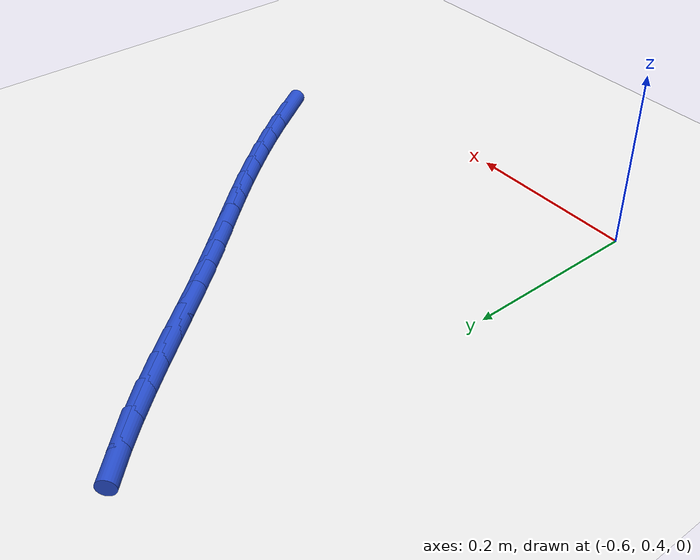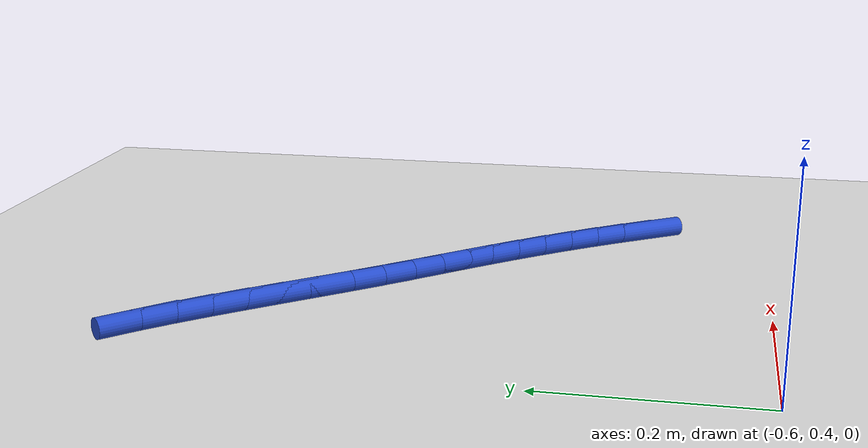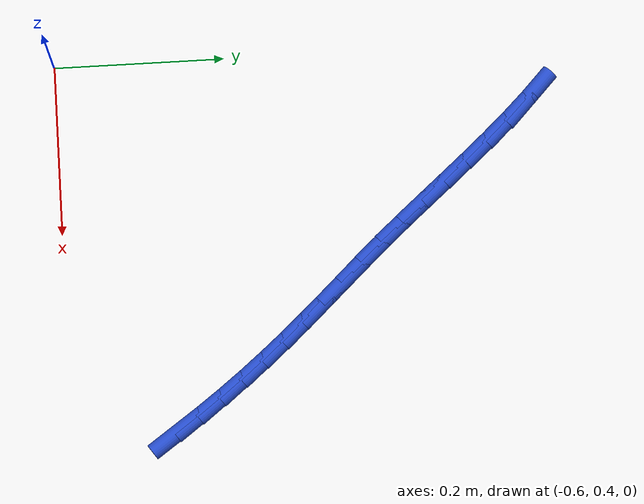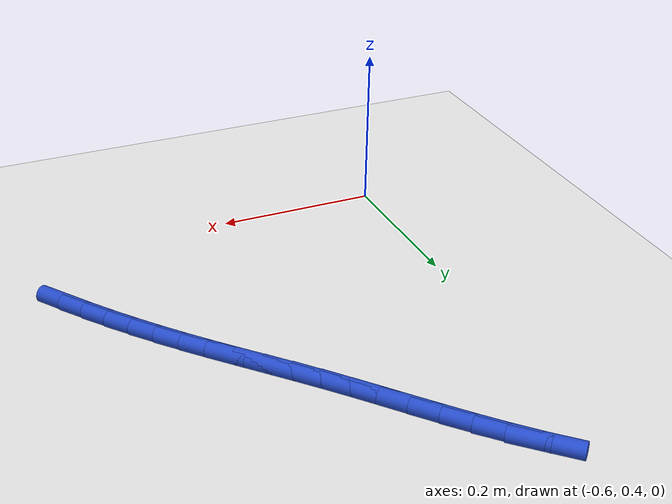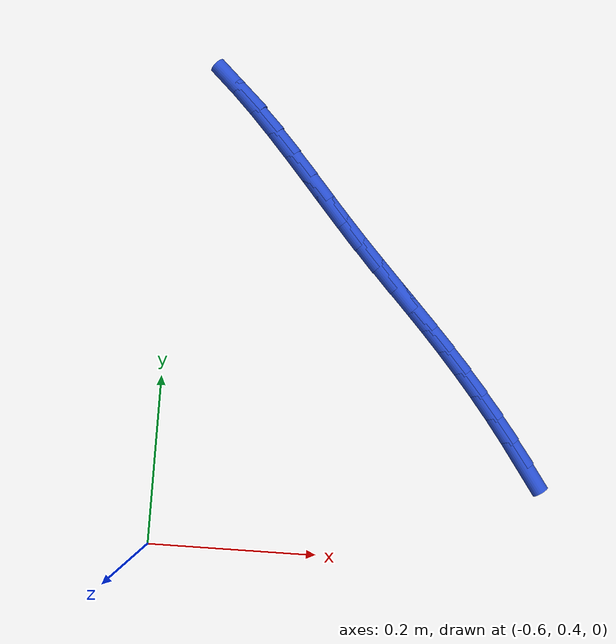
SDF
<sdf version="1.6">
 <world name="default">
  <model name="ground_plane">
   <static>1</static>
   <link name="link">
    <collision name="collision">
     <geometry><plane><normal>0 0 1</normal><size>100 100</size></plane></geometry>
     <surface><friction><ode><mu>100</mu><mu2>50</mu2></ode></friction></surface>
    </collision>
    <visual name="visual">
     <cast_shadows>0</cast_shadows>
     <geometry><plane><normal>0 0 1</normal><size>100 100</size></plane></geometry>
     <material>
      <script><uri>file://media/materials/scripts/gazebo.material</uri><name>Gazebo/WhiteGlow</name></script>
     </material>
    </visual>
   </link>
  </model>
  <model name="line">
   <link name="link_17">
    <pose>-0.16201124922747104 0.5260937787866821 0.01 0 1.57 -0.9595404313695587</pose>
    <collision name="collision">
     <geometry><cylinder><radius>0.01</radius><length>0.08</length></cylinder></geometry>
    </collision>
    <visual name="visual">
     <material>
      <script><name>Gazebo/Blue</name><uri>file://media/materials/scripts/gazebo.material</uri></script>
     </material>
     <geometry><cylinder><radius>0.01</radius><length>0.08</length></cylinder></geometry>
    </visual>
   </link>
   <link name="link_18">
    <pose>-0.18100655229974133 0.5531993397178676 0.01 0 1.57 -0.9333762293121596</pose>
    <collision name="collision">
     <geometry><cylinder><radius>0.01</radius><length>0.08</length></cylinder></geometry>
    </collision>
    <visual name="visual">
     <material>
      <script><name>Gazebo/Blue</name><uri>file://media/materials/scripts/gazebo.material</uri></script>
     </material>
     <geometry><cylinder><radius>0.01</radius><length>0.08</length></cylinder></geometry>
    </visual>
   </link>
   <link name="link_19">
    <pose>-0.2006817367141205 0.5797679870796226 0.01 0 1.57 -0.908679943496282</pose>
    <collision name="collision">
     <geometry><cylinder><radius>0.01</radius><length>0.08</length></cylinder></geometry>
    </collision>
    <visual name="visual">
     <material>
      <script><name>Gazebo/Blue</name><uri>file://media/materials/scripts/gazebo.material</uri></script>
     </material>
     <geometry><cylinder><radius>0.01</radius><length>0.08</length></cylinder></geometry>
    </visual>
   </link>
   <link name="link_20">
    <pose>-0.2209632946041221 0.6057866075929514 0.01 0 1.57 -0.8853678064941394</pose>
    <collision name="collision">
     <geometry><cylinder><radius>0.01</radius><length>0.08</length></cylinder></geometry>
    </collision>
    <visual name="visual">
     <material>
      <script><name>Gazebo/Blue</name><uri>file://media/materials/scripts/gazebo.material</uri></script>
     </material>
     <geometry><cylinder><radius>0.01</radius><length>0.08</length></cylinder></geometry>
    </visual>
   </link>
   <link name="link_21">
    <pose>-0.2417777181032598 0.6312420879788588 0.01 0 1.57 -0.8633592404002483</pose>
    <collision name="collision">
     <geometry><cylinder><radius>0.01</radius><length>0.08</length></cylinder></geometry>
    </collision>
    <visual name="visual">
     <material>
      <script><name>Gazebo/Blue</name><uri>file://media/materials/scripts/gazebo.material</uri></script>
     </material>
     <geometry><cylinder><radius>0.01</radius><length>0.08</length></cylinder></geometry>
    </visual>
   </link>
   <link name="link_22">
    <pose>-0.2630514993450471 0.6561213149583486 0.01 0 1.57 -0.8429819206663465</pose>
    <collision name="collision">
     <geometry><cylinder><radius>0.01</radius><length>0.08</length></cylinder></geometry>
    </collision>
    <visual name="visual">
     <material>
      <script><name>Gazebo/Blue</name><uri>file://media/materials/scripts/gazebo.material</uri></script>
     </material>
     <geometry><cylinder><radius>0.01</radius><length>0.08</length></cylinder></geometry>
    </visual>
   </link>
   <link name="link_23">
    <pose>-0.2847099743242084 0.6804296617883872 0.01 0 1.57 -0.8281848112918715</pose>
    <collision name="collision">
     <geometry><cylinder><radius>0.01</radius><length>0.08</length></cylinder></geometry>
    </collision>
    <visual name="visual">
     <material>
      <script><name>Gazebo/Blue</name><uri>file://media/materials/scripts/gazebo.material</uri></script>
     </material>
     <geometry><cylinder><radius>0.01</radius><length>0.08</length></cylinder></geometry>
    </visual>
   </link>
   <link name="link_24">
    <pose>-0.3066673037927108 0.7043511926659936 0.01 0 1.57 -0.8213705310832886</pose>
    <collision name="collision">
     <geometry><cylinder><radius>0.01</radius><length>0.08</length></cylinder></geometry>
    </collision>
    <visual name="visual">
     <material>
      <script><name>Gazebo/Blue</name><uri>file://media/materials/scripts/gazebo.material</uri></script>
     </material>
     <geometry><cylinder><radius>0.01</radius><length>0.08</length></cylinder></geometry>
    </visual>
   </link>
   <link name="link_25">
    <pose>-0.3288313861517711 0.7281701061089301 0.01 0 1.57 -0.8226092343197998</pose>
    <collision name="collision">
     <geometry><cylinder><radius>0.01</radius><length>0.08</length></cylinder></geometry>
    </collision>
    <visual name="visual">
     <material>
      <script><name>Gazebo/Blue</name><uri>file://media/materials/scripts/gazebo.material</uri></script>
     </material>
     <geometry><cylinder><radius>0.01</radius><length>0.08</length></cylinder></geometry>
    </visual>
   </link>
   <link name="link_26">
    <pose>-0.35111005078721735 0.7521717041836616 0.01 0 1.57 -0.8317297002062111</pose>
    <collision name="collision">
     <geometry><cylinder><radius>0.01</radius><length>0.08</length></cylinder></geometry>
    </collision>
    <visual name="visual">
     <material>
      <script><name>Gazebo/Blue</name><uri>file://media/materials/scripts/gazebo.material</uri></script>
     </material>
     <geometry><cylinder><radius>0.01</radius><length>0.08</length></cylinder></geometry>
    </visual>
   </link>
   <link name="link_27">
    <pose>-0.37341112708487795 0.7766412889566531 0.01 0 1.57 -0.847632205602835</pose>
    <collision name="collision">
     <geometry><cylinder><radius>0.01</radius><length>0.08</length></cylinder></geometry>
    </collision>
    <visual name="visual">
     <material>
      <script><name>Gazebo/Blue</name><uri>file://media/materials/scripts/gazebo.material</uri></script>
     </material>
     <geometry><cylinder><radius>0.01</radius><length>0.08</length></cylinder></geometry>
    </visual>
   </link>
   <link name="link_28">
    <pose>-0.3956509368412511 0.8018370214054659 0.01 0 1.57 -0.8609041498238644</pose>
    <collision name="collision">
     <geometry><cylinder><radius>0.01</radius><length>0.08</length></cylinder></geometry>
    </collision>
    <visual name="visual">
     <material>
      <script><name>Gazebo/Blue</name><uri>file://media/materials/scripts/gazebo.material</uri></script>
     </material>
     <geometry><cylinder><radius>0.01</radius><length>0.08</length></cylinder></geometry>
    </visual>
   </link>
   <link name="link_29">
    <pose>-0.4178532981766036 0.8276735125554032 0.01 0 1.57 -0.8656417425640428</pose>
    <collision name="collision">
     <geometry><cylinder><radius>0.01</radius><length>0.08</length></cylinder></geometry>
    </collision>
    <visual name="visual">
     <material>
      <script><name>Gazebo/Blue</name><uri>file://media/materials/scripts/gazebo.material</uri></script>
     </material>
     <geometry><cylinder><radius>0.01</radius><length>0.08</length></cylinder></geometry>
    </visual>
   </link>
   <link name="link_30">
    <pose>-0.4401157878347854 0.8538296465648259 0.01 0 1.57 -0.8620089077731679</pose>
    <collision name="collision">
     <geometry><cylinder><radius>0.01</radius><length>0.08</length></cylinder></geometry>
    </collision>
    <visual name="visual">
     <material>
      <script><name>Gazebo/Blue</name><uri>file://media/materials/scripts/gazebo.material</uri></script>
     </material>
     <geometry><cylinder><radius>0.01</radius><length>0.08</length></cylinder></geometry>
    </visual>
   </link>
   <link name="link_31">
    <pose>-0.4625374258976617 0.8799796947952138 0.01 0 1.57 -0.8500205127177866</pose>
    <collision name="collision">
     <geometry><cylinder><radius>0.01</radius><length>0.08</length></cylinder></geometry>
    </collision>
    <visual name="visual">
     <material>
      <script><name>Gazebo/Blue</name><uri>file://media/materials/scripts/gazebo.material</uri></script>
     </material>
     <geometry><cylinder><radius>0.01</radius><length>0.08</length></cylinder></geometry>
    </visual>
   </link>
   <link name="link_32">
    <pose>-0.4852172324470993 0.905797928608048 0.01 0 1.57 -0.8294318722910394</pose>
    <collision name="collision">
     <geometry><cylinder><radius>0.01</radius><length>0.08</length></cylinder></geometry>
    </collision>
    <visual name="visual">
     <material>
      <script><name>Gazebo/Blue</name><uri>file://media/materials/scripts/gazebo.material</uri></script>
     </material>
     <geometry><cylinder><radius>0.01</radius><length>0.08</length></cylinder></geometry>
    </visual>
   </link>
   <link name="link_33">
    <pose>-0.5082542275649639 0.9309586193648087 0.01 0 1.57 -0.7997501536717067</pose>
    <collision name="collision">
     <geometry><cylinder><radius>0.01</radius><length>0.08</length></cylinder></geometry>
    </collision>
    <visual name="visual">
     <material>
      <script><name>Gazebo/Blue</name><uri>file://media/materials/scripts/gazebo.material</uri></script>
     </material>
     <geometry><cylinder><radius>0.01</radius><length>0.08</length></cylinder></geometry>
    </visual>
   </link>
   <link name="link_34">
    <pose>-0.5317474313331215 0.9551360384269767 0.01 0 1.57 -0.7602522932787537</pose>
    <collision name="collision">
     <geometry><cylinder><radius>0.01</radius><length>0.08</length></cylinder></geometry>
    </collision>
    <visual name="visual">
     <material>
      <script><name>Gazebo/Blue</name><uri>file://media/materials/scripts/gazebo.material</uri></script>
     </material>
     <geometry><cylinder><radius>0.01</radius><length>0.08</length></cylinder></geometry>
    </visual>
   </link>
  </model>
 </world>
</sdf>
